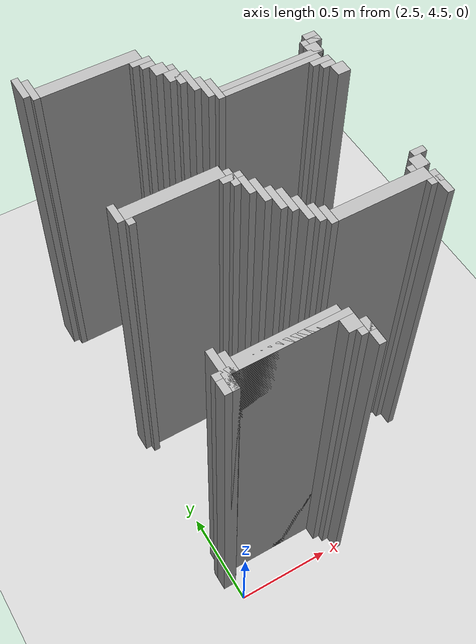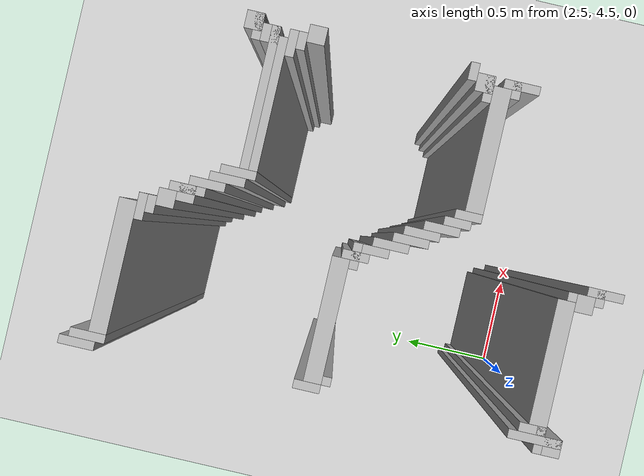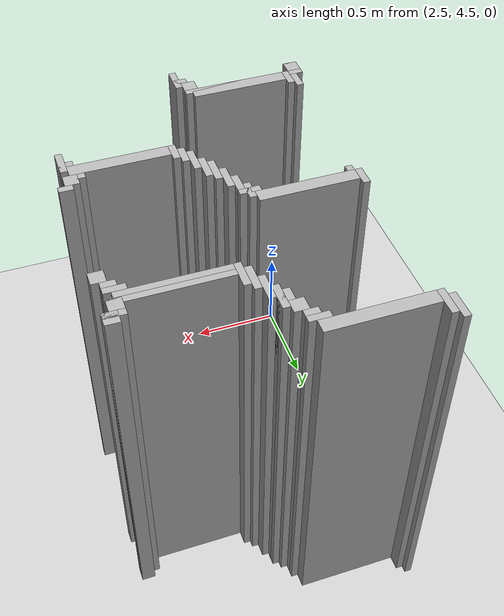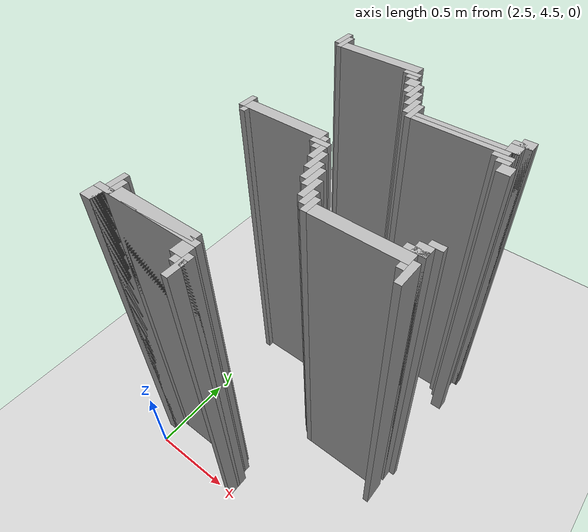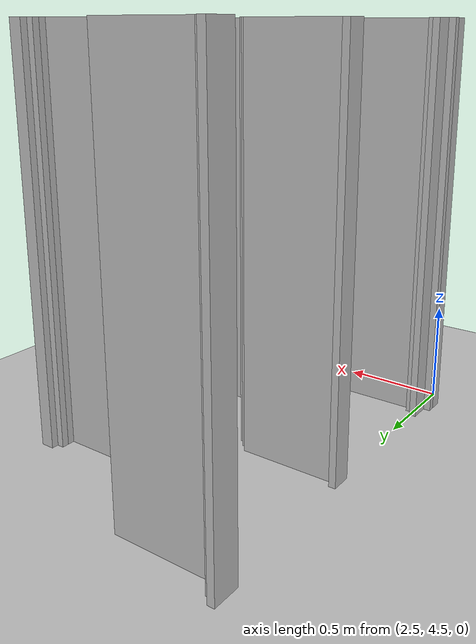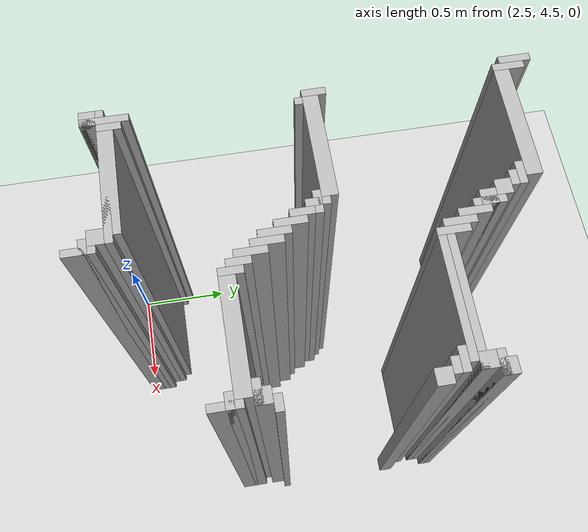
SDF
<sdf version="1.6">
 <world name="slam_world">
  <model name="ground_plane">
   <static>true</static>
   <link name="link">
    <collision name="collision">
     <geometry><plane><normal>0 0 1</normal><size>100 100</size></plane></geometry>
    </collision>
    <visual name="visual">
     <geometry><plane><normal>0 0 1</normal><size>100 100</size></plane></geometry>
     <material>
      <ambient>0.8 0.8 0.8 1</ambient>
      <diffuse>0.8 0.8 0.8 1</diffuse>
      <specular>0.8 0.8 0.8 1</specular>
     </material>
    </visual>
   </link>
  </model>
  <model name="wall_3628">
   <static>true</static>
   <pose>2.453596287703016 6.473317865429234 1.0 0 0 0</pose>
   <link name="link">
    <collision name="collision">
     <geometry><box><size>0.03480278422273782 0.13921113689095127 2.0</size></box></geometry>
    </collision>
    <visual name="visual">
     <geometry><box><size>0.03480278422273782 0.13921113689095127 2.0</size></box></geometry>
     <material><ambient>0.5 0.5 0.5 1</ambient><diffuse>0.7 0.7 0.7 1</diffuse></material>
    </visual>
   </link>
  </model>
  <model name="wall_3641">
   <static>true</static>
   <pose>2.488399071925754 6.438515081206496 1.0 0 0 0</pose>
   <link name="link">
    <collision name="collision">
     <geometry><box><size>0.03480278422273782 0.13921113689095127 2.0</size></box></geometry>
    </collision>
    <visual name="visual">
     <geometry><box><size>0.03480278422273782 0.13921113689095127 2.0</size></box></geometry>
     <material><ambient>0.5 0.5 0.5 1</ambient><diffuse>0.7 0.7 0.7 1</diffuse></material>
    </visual>
   </link>
  </model>
  <model name="wall_3661">
   <static>true</static>
   <pose>2.7668213457076565 6.403712296983758 1.0 0 0 0</pose>
   <link name="link">
    <collision name="collision">
     <geometry><box><size>0.5220417633410672 0.06960556844547564 2.0</size></box></geometry>
    </collision>
    <visual name="visual">
     <geometry><box><size>0.5220417633410672 0.06960556844547564 2.0</size></box></geometry>
     <material><ambient>0.5 0.5 0.5 1</ambient><diffuse>0.7 0.7 0.7 1</diffuse></material>
    </visual>
   </link>
  </model>
  <model name="wall_3679">
   <static>true</static>
   <pose>3.010440835266821 6.351508120649652 1.0 0 0 0</pose>
   <link name="link">
    <collision name="collision">
     <geometry><box><size>0.10440835266821345 0.03480278422273782 2.0</size></box></geometry>
    </collision>
    <visual name="visual">
     <geometry><box><size>0.10440835266821345 0.03480278422273782 2.0</size></box></geometry>
     <material><ambient>0.5 0.5 0.5 1</ambient><diffuse>0.7 0.7 0.7 1</diffuse></material>
    </visual>
   </link>
  </model>
  <model name="wall_3691">
   <static>true</static>
   <pose>3.02784222737819 6.316705336426914 1.0 0 0 0</pose>
   <link name="link">
    <collision name="collision">
     <geometry><box><size>0.06960556844547564 0.03480278422273782 2.0</size></box></geometry>
    </collision>
    <visual name="visual">
     <geometry><box><size>0.06960556844547564 0.03480278422273782 2.0</size></box></geometry>
     <material><ambient>0.5 0.5 0.5 1</ambient><diffuse>0.7 0.7 0.7 1</diffuse></material>
    </visual>
   </link>
  </model>
  <model name="wall_3702">
   <static>true</static>
   <pose>3.062645011600928 6.2645011600928076 1.0 0 0 0</pose>
   <link name="link">
    <collision name="collision">
     <geometry><box><size>0.06960556844547564 0.06960556844547564 2.0</size></box></geometry>
    </collision>
    <visual name="visual">
     <geometry><box><size>0.06960556844547564 0.06960556844547564 2.0</size></box></geometry>
     <material><ambient>0.5 0.5 0.5 1</ambient><diffuse>0.7 0.7 0.7 1</diffuse></material>
    </visual>
   </link>
  </model>
  <model name="wall_3715">
   <static>true</static>
   <pose>3.1148491879350346 6.194895591647332 1.0 0 0 0</pose>
   <link name="link">
    <collision name="collision">
     <geometry><box><size>0.03480278422273782 0.13921113689095127 2.0</size></box></geometry>
    </collision>
    <visual name="visual">
     <geometry><box><size>0.03480278422273782 0.13921113689095127 2.0</size></box></geometry>
     <material><ambient>0.5 0.5 0.5 1</ambient><diffuse>0.7 0.7 0.7 1</diffuse></material>
    </visual>
   </link>
  </model>
  <model name="wall_3728">
   <static>true</static>
   <pose>3.097447795823666 6.194895591647332 1.0 0 0 0</pose>
   <link name="link">
    <collision name="collision">
     <geometry><box><size>0.06960556844547564 0.06960556844547564 2.0</size></box></geometry>
    </collision>
    <visual name="visual">
     <geometry><box><size>0.06960556844547564 0.06960556844547564 2.0</size></box></geometry>
     <material><ambient>0.5 0.5 0.5 1</ambient><diffuse>0.7 0.7 0.7 1</diffuse></material>
    </visual>
   </link>
  </model>
  <model name="wall_3741">
   <static>true</static>
   <pose>3.1496519721577725 6.125290023201856 1.0 0 0 0</pose>
   <link name="link">
    <collision name="collision">
     <geometry><box><size>0.03480278422273782 0.13921113689095127 2.0</size></box></geometry>
    </collision>
    <visual name="visual">
     <geometry><box><size>0.03480278422273782 0.13921113689095127 2.0</size></box></geometry>
     <material><ambient>0.5 0.5 0.5 1</ambient><diffuse>0.7 0.7 0.7 1</diffuse></material>
    </visual>
   </link>
  </model>
  <model name="wall_3758">
   <static>true</static>
   <pose>3.1844547563805103 6.05568445475638 1.0 0 0 0</pose>
   <link name="link">
    <collision name="collision">
     <geometry><box><size>0.03480278422273782 0.13921113689095127 2.0</size></box></geometry>
    </collision>
    <visual name="visual">
     <geometry><box><size>0.03480278422273782 0.13921113689095127 2.0</size></box></geometry>
     <material><ambient>0.5 0.5 0.5 1</ambient><diffuse>0.7 0.7 0.7 1</diffuse></material>
    </visual>
   </link>
  </model>
  <model name="wall_3759">
   <static>true</static>
   <pose>3.793503480278422 6.090487238979118 1.0 0 0 0</pose>
   <link name="link">
    <collision name="collision">
     <geometry><box><size>0.06960556844547564 0.06960556844547564 2.0</size></box></geometry>
    </collision>
    <visual name="visual">
     <geometry><box><size>0.06960556844547564 0.06960556844547564 2.0</size></box></geometry>
     <material><ambient>0.5 0.5 0.5 1</ambient><diffuse>0.7 0.7 0.7 1</diffuse></material>
    </visual>
   </link>
  </model>
  <model name="wall_3771">
   <static>true</static>
   <pose>3.219257540603248 6.020881670533642 1.0 0 0 0</pose>
   <link name="link">
    <collision name="collision">
     <geometry><box><size>0.03480278422273782 0.13921113689095127 2.0</size></box></geometry>
    </collision>
    <visual name="visual">
     <geometry><box><size>0.03480278422273782 0.13921113689095127 2.0</size></box></geometry>
     <material><ambient>0.5 0.5 0.5 1</ambient><diffuse>0.7 0.7 0.7 1</diffuse></material>
    </visual>
   </link>
  </model>
  <model name="wall_3772">
   <static>true</static>
   <pose>3.776102088167053 6.073085846867749 1.0 0 0 0</pose>
   <link name="link">
    <collision name="collision">
     <geometry><box><size>0.10440835266821345 0.03480278422273782 2.0</size></box></geometry>
    </collision>
    <visual name="visual">
     <geometry><box><size>0.10440835266821345 0.03480278422273782 2.0</size></box></geometry>
     <material><ambient>0.5 0.5 0.5 1</ambient><diffuse>0.7 0.7 0.7 1</diffuse></material>
    </visual>
   </link>
  </model>
  <model name="wall_3783">
   <static>true</static>
   <pose>3.7587006960556844 6.020881670533642 1.0 0 0 0</pose>
   <link name="link">
    <collision name="collision">
     <geometry><box><size>0.06960556844547564 0.06960556844547564 2.0</size></box></geometry>
    </collision>
    <visual name="visual">
     <geometry><box><size>0.06960556844547564 0.06960556844547564 2.0</size></box></geometry>
     <material><ambient>0.5 0.5 0.5 1</ambient><diffuse>0.7 0.7 0.7 1</diffuse></material>
    </visual>
   </link>
  </model>
  <model name="wall_3789">
   <static>true</static>
   <pose>3.51508120649652 6.003480278422273 1.0 0 0 0</pose>
   <link name="link">
    <collision name="collision">
     <geometry><box><size>0.5568445475638051 0.03480278422273782 2.0</size></box></geometry>
    </collision>
    <visual name="visual">
     <geometry><box><size>0.5568445475638051 0.03480278422273782 2.0</size></box></geometry>
     <material><ambient>0.5 0.5 0.5 1</ambient><diffuse>0.7 0.7 0.7 1</diffuse></material>
    </visual>
   </link>
  </model>
  <model name="wall_3801">
   <static>true</static>
   <pose>3.4976798143851506 5.968677494199536 1.0 0 0 0</pose>
   <link name="link">
    <collision name="collision">
     <geometry><box><size>0.5220417633410672 0.03480278422273782 2.0</size></box></geometry>
    </collision>
    <visual name="visual">
     <geometry><box><size>0.5220417633410672 0.03480278422273782 2.0</size></box></geometry>
     <material><ambient>0.5 0.5 0.5 1</ambient><diffuse>0.7 0.7 0.7 1</diffuse></material>
    </visual>
   </link>
  </model>
  <model name="wall_3813">
   <static>true</static>
   <pose>3.741299303944315 5.933874709976798 1.0 0 0 0</pose>
   <link name="link">
    <collision name="collision">
     <geometry><box><size>0.10440835266821345 0.03480278422273782 2.0</size></box></geometry>
    </collision>
    <visual name="visual">
     <geometry><box><size>0.10440835266821345 0.03480278422273782 2.0</size></box></geometry>
     <material><ambient>0.5 0.5 0.5 1</ambient><diffuse>0.7 0.7 0.7 1</diffuse></material>
    </visual>
   </link>
  </model>
  <model name="wall_3828">
   <static>true</static>
   <pose>3.7587006960556844 5.89907192575406 1.0 0 0 0</pose>
   <link name="link">
    <collision name="collision">
     <geometry><box><size>0.06960556844547564 0.03480278422273782 2.0</size></box></geometry>
    </collision>
    <visual name="visual">
     <geometry><box><size>0.06960556844547564 0.03480278422273782 2.0</size></box></geometry>
     <material><ambient>0.5 0.5 0.5 1</ambient><diffuse>0.7 0.7 0.7 1</diffuse></material>
    </visual>
   </link>
  </model>
  <model name="wall_3842">
   <static>true</static>
   <pose>3.793503480278422 5.846867749419953 1.0 0 0 0</pose>
   <link name="link">
    <collision name="collision">
     <geometry><box><size>0.06960556844547564 0.06960556844547564 2.0</size></box></geometry>
    </collision>
    <visual name="visual">
     <geometry><box><size>0.06960556844547564 0.06960556844547564 2.0</size></box></geometry>
     <material><ambient>0.5 0.5 0.5 1</ambient><diffuse>0.7 0.7 0.7 1</diffuse></material>
    </visual>
   </link>
  </model>
  <model name="wall_3926">
   <static>true</static>
   <pose>2.488399071925754 5.58584686774942 1.0 0 0 0</pose>
   <link name="link">
    <collision name="collision">
     <geometry><box><size>0.03480278422273782 0.10440835266821345 2.0</size></box></geometry>
    </collision>
    <visual name="visual">
     <geometry><box><size>0.03480278422273782 0.10440835266821345 2.0</size></box></geometry>
     <material><ambient>0.5 0.5 0.5 1</ambient><diffuse>0.7 0.7 0.7 1</diffuse></material>
    </visual>
   </link>
  </model>
  <model name="wall_3942">
   <static>true</static>
   <pose>2.7494199535962878 5.56844547563805 1.0 0 0 0</pose>
   <link name="link">
    <collision name="collision">
     <geometry><box><size>0.4872389791183295 0.06960556844547564 2.0</size></box></geometry>
    </collision>
    <visual name="visual">
     <geometry><box><size>0.4872389791183295 0.06960556844547564 2.0</size></box></geometry>
     <material><ambient>0.5 0.5 0.5 1</ambient><diffuse>0.7 0.7 0.7 1</diffuse></material>
    </visual>
   </link>
  </model>
  <model name="wall_3957">
   <static>true</static>
   <pose>3.010440835266821 5.516241299303944 1.0 0 0 0</pose>
   <link name="link">
    <collision name="collision">
     <geometry><box><size>0.03480278422273782 0.10440835266821345 2.0</size></box></geometry>
    </collision>
    <visual name="visual">
     <geometry><box><size>0.03480278422273782 0.10440835266821345 2.0</size></box></geometry>
     <material><ambient>0.5 0.5 0.5 1</ambient><diffuse>0.7 0.7 0.7 1</diffuse></material>
    </visual>
   </link>
  </model>
  <model name="wall_3969">
   <static>true</static>
   <pose>2.523201856148492 5.516241299303944 1.0 0 0 0</pose>
   <link name="link">
    <collision name="collision">
     <geometry><box><size>0.03480278422273782 0.03480278422273782 2.0</size></box></geometry>
    </collision>
    <visual name="visual">
     <geometry><box><size>0.03480278422273782 0.03480278422273782 2.0</size></box></geometry>
     <material><ambient>0.5 0.5 0.5 1</ambient><diffuse>0.7 0.7 0.7 1</diffuse></material>
    </visual>
   </link>
  </model>
  <model name="wall_3970">
   <static>true</static>
   <pose>3.010440835266821 5.516241299303944 1.0 0 0 0</pose>
   <link name="link">
    <collision name="collision">
     <geometry><box><size>0.10440835266821345 0.03480278422273782 2.0</size></box></geometry>
    </collision>
    <visual name="visual">
     <geometry><box><size>0.10440835266821345 0.03480278422273782 2.0</size></box></geometry>
     <material><ambient>0.5 0.5 0.5 1</ambient><diffuse>0.7 0.7 0.7 1</diffuse></material>
    </visual>
   </link>
  </model>
  <model name="wall_3986">
   <static>true</static>
   <pose>3.045243619489559 5.4466357308584685 1.0 0 0 0</pose>
   <link name="link">
    <collision name="collision">
     <geometry><box><size>0.03480278422273782 0.10440835266821345 2.0</size></box></geometry>
    </collision>
    <visual name="visual">
     <geometry><box><size>0.03480278422273782 0.10440835266821345 2.0</size></box></geometry>
     <material><ambient>0.5 0.5 0.5 1</ambient><diffuse>0.7 0.7 0.7 1</diffuse></material>
    </visual>
   </link>
  </model>
  <model name="wall_3999">
   <static>true</static>
   <pose>3.0800464037122968 5.3944315545243615 1.0 0 0 0</pose>
   <link name="link">
    <collision name="collision">
     <geometry><box><size>0.03480278422273782 0.13921113689095127 2.0</size></box></geometry>
    </collision>
    <visual name="visual">
     <geometry><box><size>0.03480278422273782 0.13921113689095127 2.0</size></box></geometry>
     <material><ambient>0.5 0.5 0.5 1</ambient><diffuse>0.7 0.7 0.7 1</diffuse></material>
    </visual>
   </link>
  </model>
  <model name="wall_4012">
   <static>true</static>
   <pose>3.1148491879350346 5.324825986078886 1.0 0 0 0</pose>
   <link name="link">
    <collision name="collision">
     <geometry><box><size>0.03480278422273782 0.13921113689095127 2.0</size></box></geometry>
    </collision>
    <visual name="visual">
     <geometry><box><size>0.03480278422273782 0.13921113689095127 2.0</size></box></geometry>
     <material><ambient>0.5 0.5 0.5 1</ambient><diffuse>0.7 0.7 0.7 1</diffuse></material>
    </visual>
   </link>
  </model>
  <model name="wall_4025">
   <static>true</static>
   <pose>3.1496519721577725 5.290023201856148 1.0 0 0 0</pose>
   <link name="link">
    <collision name="collision">
     <geometry><box><size>0.03480278422273782 0.13921113689095127 2.0</size></box></geometry>
    </collision>
    <visual name="visual">
     <geometry><box><size>0.03480278422273782 0.13921113689095127 2.0</size></box></geometry>
     <material><ambient>0.5 0.5 0.5 1</ambient><diffuse>0.7 0.7 0.7 1</diffuse></material>
    </visual>
   </link>
  </model>
  <model name="wall_4045">
   <static>true</static>
   <pose>3.1844547563805103 5.220417633410673 1.0 0 0 0</pose>
   <link name="link">
    <collision name="collision">
     <geometry><box><size>0.03480278422273782 0.13921113689095127 2.0</size></box></geometry>
    </collision>
    <visual name="visual">
     <geometry><box><size>0.03480278422273782 0.13921113689095127 2.0</size></box></geometry>
     <material><ambient>0.5 0.5 0.5 1</ambient><diffuse>0.7 0.7 0.7 1</diffuse></material>
    </visual>
   </link>
  </model>
  <model name="wall_4057">
   <static>true</static>
   <pose>3.793503480278422 5.237819025522041 1.0 0 0 0</pose>
   <link name="link">
    <collision name="collision">
     <geometry><box><size>0.06960556844547564 0.03480278422273782 2.0</size></box></geometry>
    </collision>
    <visual name="visual">
     <geometry><box><size>0.06960556844547564 0.03480278422273782 2.0</size></box></geometry>
     <material><ambient>0.5 0.5 0.5 1</ambient><diffuse>0.7 0.7 0.7 1</diffuse></material>
    </visual>
   </link>
  </model>
  <model name="wall_4064">
   <static>true</static>
   <pose>3.219257540603248 5.168213457076566 1.0 0 0 0</pose>
   <link name="link">
    <collision name="collision">
     <geometry><box><size>0.03480278422273782 0.10440835266821345 2.0</size></box></geometry>
    </collision>
    <visual name="visual">
     <geometry><box><size>0.03480278422273782 0.10440835266821345 2.0</size></box></geometry>
     <material><ambient>0.5 0.5 0.5 1</ambient><diffuse>0.7 0.7 0.7 1</diffuse></material>
    </visual>
   </link>
  </model>
  <model name="wall_4065">
   <static>true</static>
   <pose>3.7587006960556844 5.185614849187935 1.0 0 0 0</pose>
   <link name="link">
    <collision name="collision">
     <geometry><box><size>0.06960556844547564 0.06960556844547564 2.0</size></box></geometry>
    </collision>
    <visual name="visual">
     <geometry><box><size>0.06960556844547564 0.06960556844547564 2.0</size></box></geometry>
     <material><ambient>0.5 0.5 0.5 1</ambient><diffuse>0.7 0.7 0.7 1</diffuse></material>
    </visual>
   </link>
  </model>
  <model name="wall_4077">
   <static>true</static>
   <pose>3.254060324825986 5.133410672853828 1.0 0 0 0</pose>
   <link name="link">
    <collision name="collision">
     <geometry><box><size>0.03480278422273782 0.10440835266821345 2.0</size></box></geometry>
    </collision>
    <visual name="visual">
     <geometry><box><size>0.03480278422273782 0.10440835266821345 2.0</size></box></geometry>
     <material><ambient>0.5 0.5 0.5 1</ambient><diffuse>0.7 0.7 0.7 1</diffuse></material>
    </visual>
   </link>
  </model>
  <model name="wall_4078">
   <static>true</static>
   <pose>3.741299303944315 5.168213457076566 1.0 0 0 0</pose>
   <link name="link">
    <collision name="collision">
     <geometry><box><size>0.10440835266821345 0.03480278422273782 2.0</size></box></geometry>
    </collision>
    <visual name="visual">
     <geometry><box><size>0.10440835266821345 0.03480278422273782 2.0</size></box></geometry>
     <material><ambient>0.5 0.5 0.5 1</ambient><diffuse>0.7 0.7 0.7 1</diffuse></material>
    </visual>
   </link>
  </model>
  <model name="wall_4090">
   <static>true</static>
   <pose>3.51508120649652 5.1160092807424595 1.0 0 0 0</pose>
   <link name="link">
    <collision name="collision">
     <geometry><box><size>0.4872389791183295 0.06960556844547564 2.0</size></box></geometry>
    </collision>
    <visual name="visual">
     <geometry><box><size>0.4872389791183295 0.06960556844547564 2.0</size></box></geometry>
     <material><ambient>0.5 0.5 0.5 1</ambient><diffuse>0.7 0.7 0.7 1</diffuse></material>
    </visual>
   </link>
  </model>
  <model name="wall_4100">
   <static>true</static>
   <pose>3.776102088167053 5.046403712296984 1.0 0 0 0</pose>
   <link name="link">
    <collision name="collision">
     <geometry><box><size>0.03480278422273782 0.13921113689095127 2.0</size></box></geometry>
    </collision>
    <visual name="visual">
     <geometry><box><size>0.03480278422273782 0.13921113689095127 2.0</size></box></geometry>
     <material><ambient>0.5 0.5 0.5 1</ambient><diffuse>0.7 0.7 0.7 1</diffuse></material>
    </visual>
   </link>
  </model>
  <model name="wall_4114">
   <static>true</static>
   <pose>3.7587006960556844 5.0638051044083525 1.0 0 0 0</pose>
   <link name="link">
    <collision name="collision">
     <geometry><box><size>0.06960556844547564 0.03480278422273782 2.0</size></box></geometry>
    </collision>
    <visual name="visual">
     <geometry><box><size>0.06960556844547564 0.03480278422273782 2.0</size></box></geometry>
     <material><ambient>0.5 0.5 0.5 1</ambient><diffuse>0.7 0.7 0.7 1</diffuse></material>
    </visual>
   </link>
  </model>
  <model name="wall_4205">
   <static>true</static>
   <pose>2.488399071925754 4.698375870069605 1.0 0 0 0</pose>
   <link name="link">
    <collision name="collision">
     <geometry><box><size>0.03480278422273782 0.2088167053364269 2.0</size></box></geometry>
    </collision>
    <visual name="visual">
     <geometry><box><size>0.03480278422273782 0.2088167053364269 2.0</size></box></geometry>
     <material><ambient>0.5 0.5 0.5 1</ambient><diffuse>0.7 0.7 0.7 1</diffuse></material>
    </visual>
   </link>
  </model>
  <model name="wall_4219">
   <static>true</static>
   <pose>2.523201856148492 4.715777262180974 1.0 0 0 0</pose>
   <link name="link">
    <collision name="collision">
     <geometry><box><size>0.03480278422273782 0.10440835266821345 2.0</size></box></geometry>
    </collision>
    <visual name="visual">
     <geometry><box><size>0.03480278422273782 0.10440835266821345 2.0</size></box></geometry>
     <material><ambient>0.5 0.5 0.5 1</ambient><diffuse>0.7 0.7 0.7 1</diffuse></material>
    </visual>
   </link>
  </model>
  <model name="wall_4234">
   <static>true</static>
   <pose>2.784222737819025 4.698375870069605 1.0 0 0 0</pose>
   <link name="link">
    <collision name="collision">
     <geometry><box><size>0.4872389791183295 0.06960556844547564 2.0</size></box></geometry>
    </collision>
    <visual name="visual">
     <geometry><box><size>0.4872389791183295 0.06960556844547564 2.0</size></box></geometry>
     <material><ambient>0.5 0.5 0.5 1</ambient><diffuse>0.7 0.7 0.7 1</diffuse></material>
    </visual>
   </link>
  </model>
  <model name="wall_4245">
   <static>true</static>
   <pose>2.7494199535962878 4.6809744779582365 1.0 0 0 0</pose>
   <link name="link">
    <collision name="collision">
     <geometry><box><size>0.6264501160092807 0.03480278422273782 2.0</size></box></geometry>
    </collision>
    <visual name="visual">
     <geometry><box><size>0.6264501160092807 0.03480278422273782 2.0</size></box></geometry>
     <material><ambient>0.5 0.5 0.5 1</ambient><diffuse>0.7 0.7 0.7 1</diffuse></material>
    </visual>
   </link>
  </model>
  <model name="wall_4255">
   <static>true</static>
   <pose>2.470997679814385 4.6287703016241295 1.0 0 0 0</pose>
   <link name="link">
    <collision name="collision">
     <geometry><box><size>0.06960556844547564 0.06960556844547564 2.0</size></box></geometry>
    </collision>
    <visual name="visual">
     <geometry><box><size>0.06960556844547564 0.06960556844547564 2.0</size></box></geometry>
     <material><ambient>0.5 0.5 0.5 1</ambient><diffuse>0.7 0.7 0.7 1</diffuse></material>
    </visual>
   </link>
  </model>
  <model name="wall_4256">
   <static>true</static>
   <pose>3.02784222737819 4.6287703016241295 1.0 0 0 0</pose>
   <link name="link">
    <collision name="collision">
     <geometry><box><size>0.06960556844547564 0.06960556844547564 2.0</size></box></geometry>
    </collision>
    <visual name="visual">
     <geometry><box><size>0.06960556844547564 0.06960556844547564 2.0</size></box></geometry>
     <material><ambient>0.5 0.5 0.5 1</ambient><diffuse>0.7 0.7 0.7 1</diffuse></material>
    </visual>
   </link>
  </model>
  <model name="wall_4267">
   <static>true</static>
   <pose>3.0800464037122968 4.559164733178654 1.0 0 0 0</pose>
   <link name="link">
    <collision name="collision">
     <geometry><box><size>0.03480278422273782 0.13921113689095127 2.0</size></box></geometry>
    </collision>
    <visual name="visual">
     <geometry><box><size>0.03480278422273782 0.13921113689095127 2.0</size></box></geometry>
     <material><ambient>0.5 0.5 0.5 1</ambient><diffuse>0.7 0.7 0.7 1</diffuse></material>
    </visual>
   </link>
  </model>
  <model name="wall_4277">
   <static>true</static>
   <pose>3.062645011600928 4.576566125290023 1.0 0 0 0</pose>
   <link name="link">
    <collision name="collision">
     <geometry><box><size>0.06960556844547564 0.03480278422273782 2.0</size></box></geometry>
    </collision>
    <visual name="visual">
     <geometry><box><size>0.06960556844547564 0.03480278422273782 2.0</size></box></geometry>
     <material><ambient>0.5 0.5 0.5 1</ambient><diffuse>0.7 0.7 0.7 1</diffuse></material>
    </visual>
   </link>
  </model>
 </world>
</sdf>
